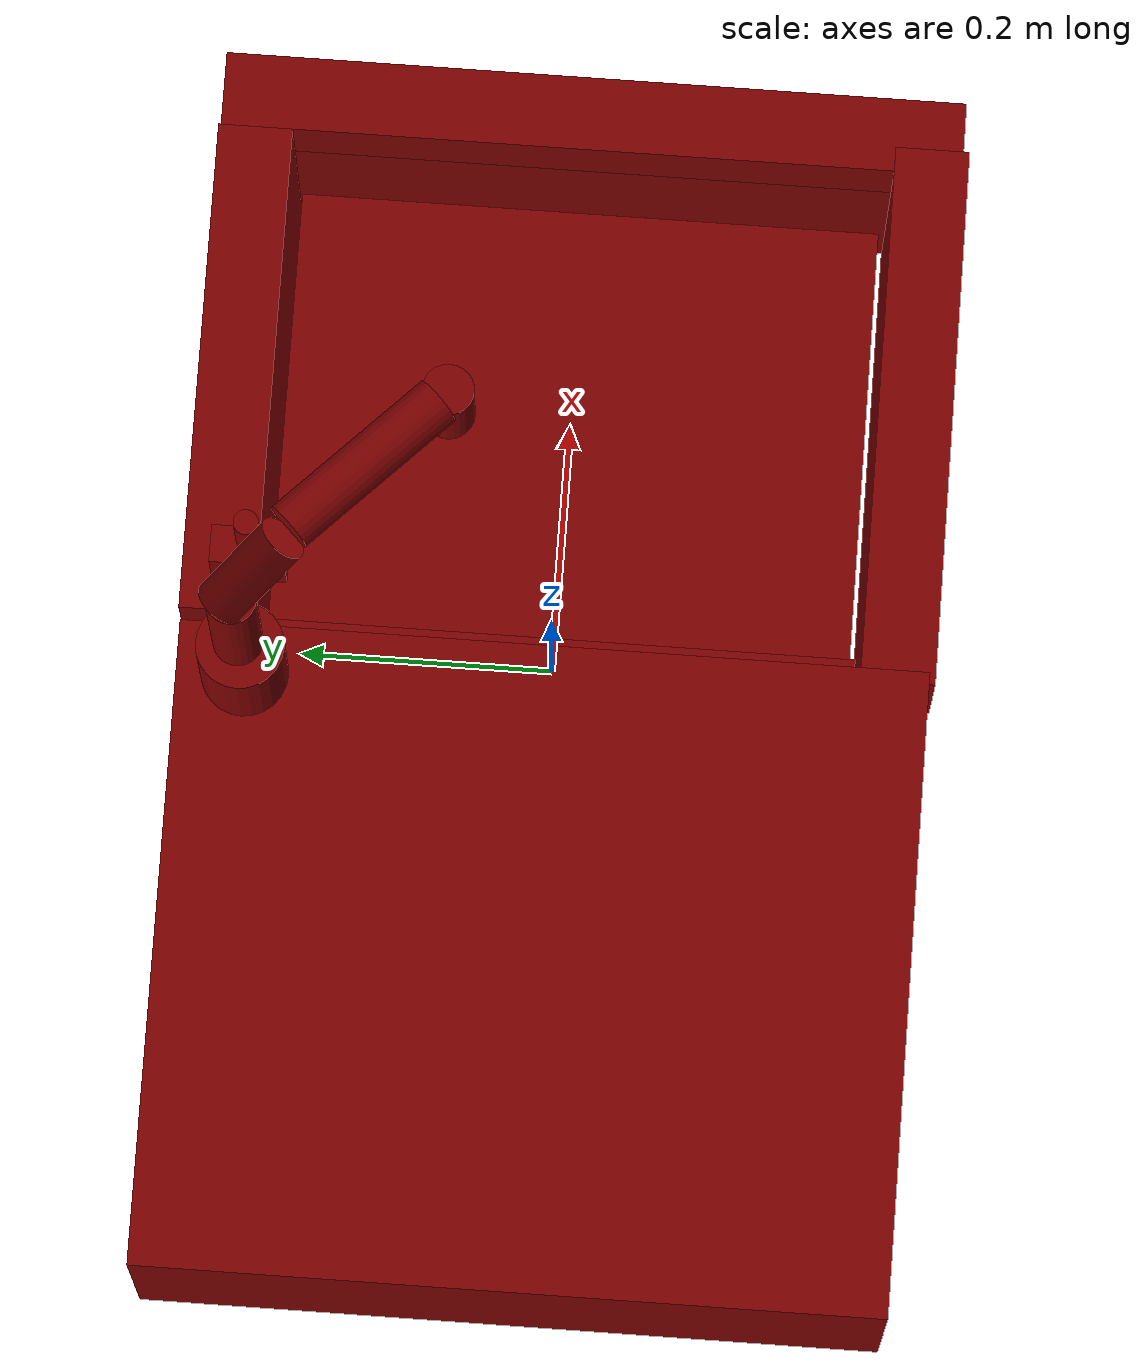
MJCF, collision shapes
<mujoco model="model">
  <compiler angle="radian"/>
  <asset>
    <texture file="visuals/material_0.png" name="tex-model" type="2d"/>
    <texture type="2d" name="image0" file="visuals/image0.png"/>
    <material name="model" reflectance="0.5" texrepeat="1 1" texture="tex-model" texuniform="false"/>
    <material name="m_sink" texture="image0" specular="0.5" shininess="0.25"/>
    <mesh file="visuals/model_0.obj" name="model_0_vis" scale="1 1 1"/>
    <mesh file="visuals/spout_0.obj" name="spout_0_vis" scale="1 1 1"/>
    <mesh file="visuals/handle_0.obj" name="handle_0_vis" scale="1 1 1"/>
  </asset>
  <default>
    <default class="visual">
      <geom conaffinity="0" contype="0" group="1" type="mesh"/>
    </default>
    <default class="collision">
      <geom group="0" rgba="0.5 0 0 0.5" solimp="0.998 0.998 0.001" solref="0.001 2"/>
    </default>
    <default class="region">
      <geom group="1" conaffinity="0" contype="0" rgba="0 1 0 0"/>
    </default>
  </default>
  <worldbody>
    <body>
      <body name="object">
        <geom solimp="0.998 0.998 0.001" solref="0.001 1" density="100" friction="0.95 0.3 0.1" type="mesh" mesh="model_0_vis" material="m_sink" class="visual"/>
        <!-- Bottom -->
        <geom class="collision" type="box" pos="0.24 0 -0.26" size="0.20 0.24 0.0125" name="bottom"/>
        <!-- Left inside-->
        <geom class="collision" type="box" pos="0.025 0 -0.15" size="0.0125 0.24 0.1"/>
        <!-- Right inside-->
        <geom class="collision" type="box" pos="0.47 0 -0.08" size="0.03 0.30 0.038"/>
        <geom class="collision" type="box" pos="0.47 0 -0.21" size="0.03 0.26 0.10"/>
        <!-- Front inside-->
        <geom class="collision" type="box" pos="0.24 -0.255 -0.18" size="0.22 0.01 0.138"/>
        <geom class="collision" type="box" pos="0.24 -0.275 -0.10" size="0.22 0.03 0.058"/>
        <!-- Back inside-->
        <geom class="collision" type="box" pos="0.24 0.272 -0.18" size="0.20 0.03 0.138"/>
        <geom class="collision" type="box" pos="-0.23 0 -0.15" size="0.26 0.30 0.108"/>
        <geom class="collision" type="cylinder" pos="-0.01 0.245 0.01" size="0.035 0.06"/>
        <body name="spout">
          <!--Add Joint Here-->
          <geom solimp="0.998 0.998 0.001" solref="0.001 1" density="100" friction="0.95 0.3 0.1" type="mesh" mesh="spout_0_vis" material="m_sink" class="visual"/>
          <geom class="collision" type="cylinder" pos="-0.009 0.246 0.16" size="0.02 0.08"/>
          <geom class="collision" type="cylinder" pos="0.005 0.23 0.28" size="0.02 0.04" euler="0.785 0.59 0"/>
          <geom class="collision" type="cylinder" pos="0.09 0.15 0.30" size="0.02 0.075" euler="1.57 0.785 0" name="spout_main"/>
          <geom class="collision" type="cylinder" pos="0.15 0.09 0.27" size="0.02 0.04" euler="0 0 0"/>
          <joint pos="-0.009 0.246 0.16" axis="0 0 1" type="hinge" damping="10" name="spout_joint"/>
          <site type="cylinder" rgba="0.5 0.75 1 0" pos="0.155 0.09 0.0" size="0.01 0.25" name="water"/>
        </body>
        <body name="handle">
          <!--Add Joint Here-->
          <geom solimp="0.998 0.998 0.001" solref="0.001 1" density="100" friction="0.95 0.3 0.1" type="mesh" mesh="handle_0_vis" material="m_sink" class="visual"/>
          <geom class="collision" type="box" pos="0.075 0.246 0.017" size="0.015 0.03 0.03" euler="0 0 0"/>
          <geom class="collision" type="cylinder" pos="0.08 0.246 0.08" size="0.01 0.03" euler="0 0 0" name="handle_main"/>
          <joint pos="0.06 0.246 0.04" axis="0 1 0" type="hinge" damping="10" name="handle_joint" range="0 0.52"/>
          <joint pos="0.06 0.246 0.017" axis="1 0 0" type="hinge" damping="50" name="handle_temp_joint" range="-0.785 0.785"/>
        </body>
        <!-- exterior bounding box points -->
        <geom class="region" name="reg_main" type="box" pos="0.0 0.0 -0.18" size="0.5 0.3 0.135"/>
        <!-- interior bounding box points -->
        <geom class="region" name="reg_basin" type="box" pos="0.24 0.0 -0.155" size="0.2 0.24 0.10500000000000001"/>
      </body>
    </body>
  </worldbody>
</mujoco>
